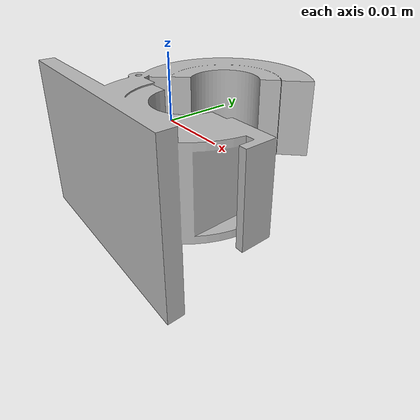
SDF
<?xml version='1.0'?>
<sdf version='1.4'>
  <model name="wire_clip_l">
    <pose>0 0 0 0 0 0</pose>
      <link name="body">
      <inertial>
        <!-- Volume-->
        <mass> 0.01 </mass>

        <!-- Center of mass: -->
        <pose>0.004311 -0.001501 -0.000037 0 0 0</pose>

        <!-- Inertia matrix (-->
        <inertia>
          <ixx>  0 </ixx>
          <ixy>  0 </ixy>
          <ixz>  0 </ixz>
          <iyy>  0 </iyy>
          <iyz>  0 </iyz>
          <izz>  0 </izz>
        </inertia>
      </inertial>

        <visual name="visual">
          <geometry>
            <mesh><uri>model://industrial-components/wire_clip_l/wire_clip_l.dae</uri></mesh>
          </geometry>
        </visual>

        <collision name="collision">
          <geometry>
            <mesh><uri>model://industrial-components/wire_clip_l/wire_clip_l.dae</uri></mesh>
          </geometry>
          <max_contacts>10</max_contacts>
          <surface>
            <friction>
              <ode>
                <mu>0.8</mu>
                <mu2>0.8</mu2>
                <slip1>0</slip1>
                <slip2>0</slip2>
              </ode>
              <torsional>
                <ode/>
              </torsional>
            </friction>
            <contact>
              <ode>
                <kp>1000000.0</kp>
                <kd>1.0</kd>
                <max_vel>0.0</max_vel>
              </ode>
            </contact>
          </surface>
        </collision>
      </link>
  </model>
</sdf>
